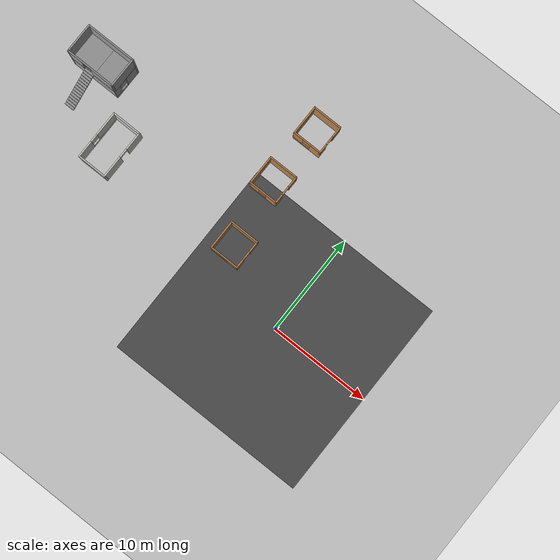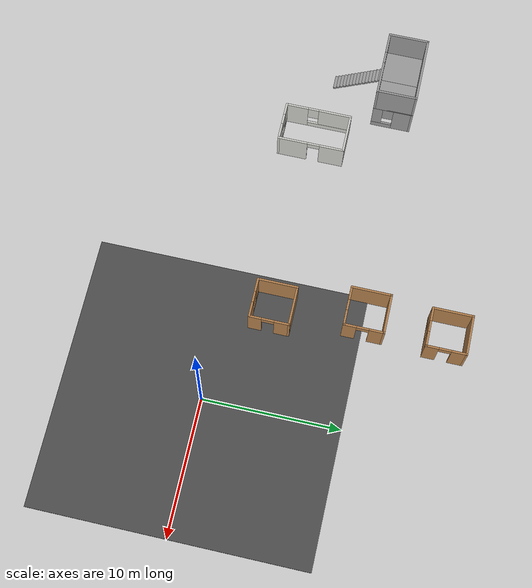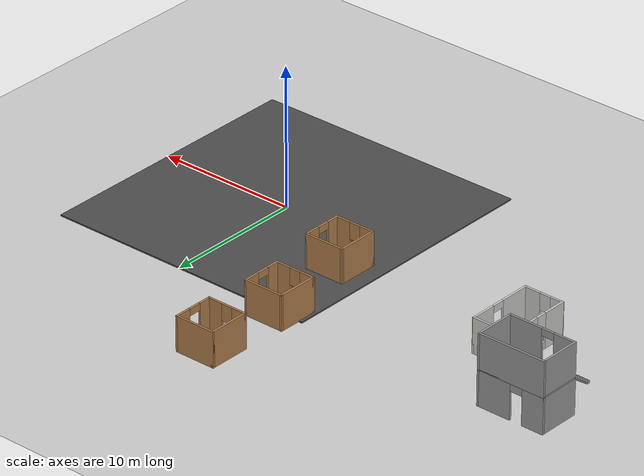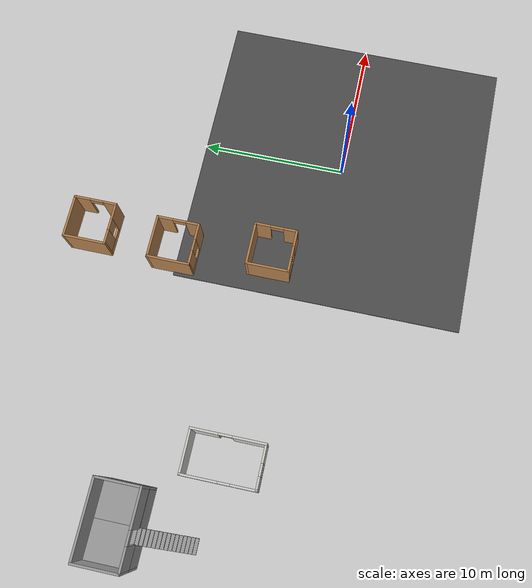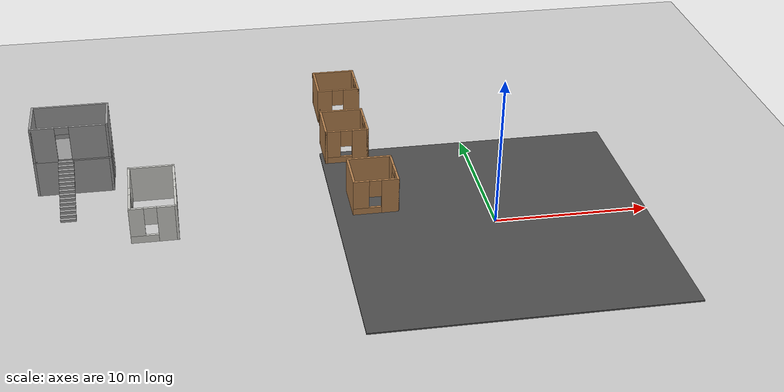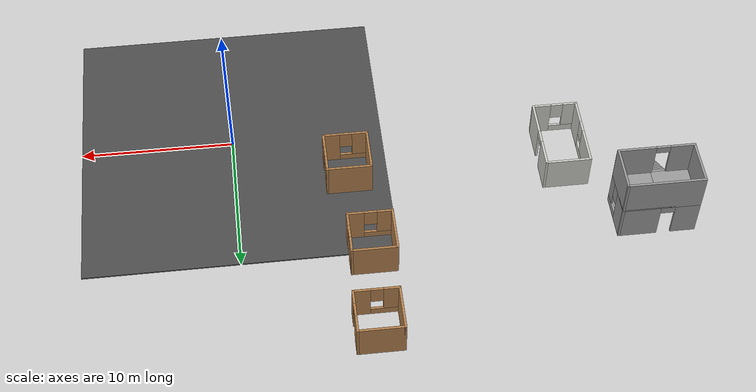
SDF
<sdf version="1.6">
 <world name="default">
  <model name="ground_plane">
   <static>1</static>
   <link name="link">
    <collision name="collision">
     <geometry><plane><normal>0 0 1</normal><size>100 100</size></plane></geometry>
     <surface><friction><ode><mu>100</mu><mu2>50</mu2></ode></friction></surface>
    </collision>
    <visual name="visual">
     <cast_shadows>0</cast_shadows>
     <geometry><plane><normal>0 0 1</normal><size>100 100</size></plane></geometry>
     <material>
      <script><uri>file://media/materials/scripts/gazebo.material</uri><name>Gazebo/Grey</name></script>
     </material>
    </visual>
   </link>
  </model>
  <model name="asphalt_plane">
   <static>1</static>
   <link name="link">
    <collision name="collision"><geometry><box><size>20 20 0.1</size></box></geometry></collision>
    <visual name="visual">
     <cast_shadows>0</cast_shadows>
     <geometry><box><size>20 20 0.1</size></box></geometry>
     <material>
      <script>
       <uri>model://asphalt_plane/materials/scripts</uri>
       <uri>model://asphalt_plane/materials/textures</uri>
       <name>vrc/asphalt</name>
      </script>
     </material>
    </visual>
   </link>
  </model>
  <model name="duplex">
   <pose>-26.5 7.252 0 0 -0 3.14</pose>
   <link name="Floor_5">
    <pose>-0 -1.70219 2.5 0 -0 0</pose>
    <visual name="Floor_5_Visual_0">
     <pose>-1.28918 0 0.05 0 -0 0</pose>
     <geometry><box><size>2.42164 3 0.1</size></box></geometry>
     <material>
      <script><uri>file://media/materials/scripts/gazebo.material</uri><name>Gazebo/Grey</name></script>
      <ambient>1 1 1 1</ambient>
     </material>
     <meta><layer>1</layer></meta>
    </visual>
    <collision name="Floor_5_Collision_0">
     <geometry><box><size>2.42164 3 0.1</size></box></geometry>
     <pose>-1.28918 0 0.05 0 -0 0</pose>
    </collision>
    <visual name="Floor_5_Visual_1">
     <pose>1.21082 -0.047806 0.05 0 -0 0</pose>
     <geometry><box><size>2.57836 2.90439 0.1</size></box></geometry>
     <material>
      <script><uri>file://media/materials/scripts/gazebo.material</uri><name>Gazebo/Grey</name></script>
      <ambient>1 1 1 1</ambient>
     </material>
     <meta><layer>1</layer></meta>
    </visual>
    <collision name="Floor_5_Collision_1">
     <geometry><box><size>2.57836 2.90439 0.1</size></box></geometry>
     <pose>1.21082 -0.047806 0.05 0 -0 0</pose>
    </collision>
    <visual name="Floor_5_Visual_2">
     <pose>1.71082 1.45219 0.05 0 -0 0</pose>
     <geometry><box><size>1.57836 0.095611 0.1</size></box></geometry>
     <material>
      <script><uri>file://media/materials/scripts/gazebo.material</uri><name>Gazebo/Grey</name></script>
      <ambient>1 1 1 1</ambient>
     </material>
     <meta><layer>1</layer></meta>
    </visual>
    <collision name="Floor_5_Collision_2">
     <geometry><box><size>1.57836 0.095611 0.1</size></box></geometry>
     <pose>1.71082 1.45219 0.05 0 -0 0</pose>
    </collision>
   </link>
   <link name="Stairs_2">
    <visual name="Stairs_2_Visual_0">
     <pose>0.421637 3.08553 0.083333 0 -0 0</pose>
     <geometry><box><size>1 0.233333 0.166667</size></box></geometry>
     <material>
      <script><uri>file://media/materials/scripts/gazebo.material</uri><name>Gazebo/Grey</name></script>
      <ambient>1 1 1 1</ambient>
     </material>
     <meta><layer>0</layer></meta>
    </visual>
    <collision name="Stairs_2_Collision_0">
     <geometry><box><size>1 0.233333 0.166667</size></box></geometry>
     <pose>0.421637 3.08553 0.083333 0 -0 0</pose>
    </collision>
    <visual name="Stairs_2_Visual_1">
     <pose>0.421637 2.85219 0.25 0 -0 0</pose>
     <geometry><box><size>1 0.233333 0.166667</size></box></geometry>
     <material>
      <script><uri>file://media/materials/scripts/gazebo.material</uri><name>Gazebo/Grey</name></script>
      <ambient>1 1 1 1</ambient>
     </material>
     <meta><layer>0</layer></meta>
    </visual>
    <collision name="Stairs_2_Collision_1">
     <geometry><box><size>1 0.233333 0.166667</size></box></geometry>
     <pose>0.421637 2.85219 0.25 0 -0 0</pose>
    </collision>
    <visual name="Stairs_2_Visual_2">
     <pose>0.421637 2.61886 0.416667 0 -0 0</pose>
     <geometry><box><size>1 0.233333 0.166667</size></box></geometry>
     <material>
      <script><uri>file://media/materials/scripts/gazebo.material</uri><name>Gazebo/Grey</name></script>
      <ambient>1 1 1 1</ambient>
     </material>
     <meta><layer>0</layer></meta>
    </visual>
    <collision name="Stairs_2_Collision_2">
     <geometry><box><size>1 0.233333 0.166667</size></box></geometry>
     <pose>0.421637 2.61886 0.416667 0 -0 0</pose>
    </collision>
    <visual name="Stairs_2_Visual_3">
     <pose>0.421637 2.38553 0.583333 0 -0 0</pose>
     <geometry><box><size>1 0.233333 0.166667</size></box></geometry>
     <material>
      <script><uri>file://media/materials/scripts/gazebo.material</uri><name>Gazebo/Grey</name></script>
      <ambient>1 1 1 1</ambient>
     </material>
     <meta><layer>0</layer></meta>
    </visual>
    <collision name="Stairs_2_Collision_3">
     <geometry><box><size>1 0.233333 0.166667</size></box></geometry>
     <pose>0.421637 2.38553 0.583333 0 -0 0</pose>
    </collision>
    <visual name="Stairs_2_Visual_4">
     <pose>0.421637 2.15219 0.75 0 -0 0</pose>
     <geometry><box><size>1 0.233333 0.166667</size></box></geometry>
     <material>
      <script><uri>file://media/materials/scripts/gazebo.material</uri><name>Gazebo/Grey</name></script>
      <ambient>1 1 1 1</ambient>
     </material>
     <meta><layer>0</layer></meta>
    </visual>
    <collision name="Stairs_2_Collision_4">
     <geometry><box><size>1 0.233333 0.166667</size></box></geometry>
     <pose>0.421637 2.15219 0.75 0 -0 0</pose>
    </collision>
    <visual name="Stairs_2_Visual_5">
     <pose>0.421637 1.91886 0.916667 0 -0 0</pose>
     <geometry><box><size>1 0.233333 0.166667</size></box></geometry>
     <material>
      <script><uri>file://media/materials/scripts/gazebo.material</uri><name>Gazebo/Grey</name></script>
      <ambient>1 1 1 1</ambient>
     </material>
     <meta><layer>0</layer></meta>
    </visual>
    <collision name="Stairs_2_Collision_5">
     <geometry><box><size>1 0.233333 0.166667</size></box></geometry>
     <pose>0.421637 1.91886 0.916667 0 -0 0</pose>
    </collision>
    <visual name="Stairs_2_Visual_6">
     <pose>0.421637 1.68553 1.08333 0 -0 0</pose>
     <geometry><box><size>1 0.233333 0.166667</size></box></geometry>
     <material>
      <script><uri>file://media/materials/scripts/gazebo.material</uri><name>Gazebo/Grey</name></script>
      <ambient>1 1 1 1</ambient>
     </material>
     <meta><layer>0</layer></meta>
    </visual>
    <collision name="Stairs_2_Collision_6">
     <geometry><box><size>1 0.233333 0.166667</size></box></geometry>
     <pose>0.421637 1.68553 1.08333 0 -0 0</pose>
    </collision>
    <visual name="Stairs_2_Visual_7">
     <pose>0.421637 1.45219 1.25 0 -0 0</pose>
     <geometry><box><size>1 0.233333 0.166667</size></box></geometry>
     <material>
      <script><uri>file://media/materials/scripts/gazebo.material</uri><name>Gazebo/Grey</name></script>
      <ambient>1 1 1 1</ambient>
     </material>
     <meta><layer>0</layer></meta>
    </visual>
    <collision name="Stairs_2_Collision_7">
     <geometry><box><size>1 0.233333 0.166667</size></box></geometry>
     <pose>0.421637 1.45219 1.25 0 -0 0</pose>
    </collision>
    <visual name="Stairs_2_Visual_8">
     <pose>0.421637 1.21886 1.41667 0 -0 0</pose>
     <geometry><box><size>1 0.233333 0.166667</size></box></geometry>
     <material>
      <script><uri>file://media/materials/scripts/gazebo.material</uri><name>Gazebo/Grey</name></script>
      <ambient>1 1 1 1</ambient>
     </material>
     <meta><layer>0</layer></meta>
    </visual>
    <collision name="Stairs_2_Collision_8">
     <geometry><box><size>1 0.233333 0.166667</size></box></geometry>
     <pose>0.421637 1.21886 1.41667 0 -0 0</pose>
    </collision>
    <visual name="Stairs_2_Visual_9">
     <pose>0.421637 0.985528 1.58333 0 -0 0</pose>
     <geometry><box><size>1 0.233333 0.166667</size></box></geometry>
     <material>
      <script><uri>file://media/materials/scripts/gazebo.material</uri><name>Gazebo/Grey</name></script>
      <ambient>1 1 1 1</ambient>
     </material>
     <meta><layer>0</layer></meta>
    </visual>
    <collision name="Stairs_2_Collision_9">
     <geometry><box><size>1 0.233333 0.166667</size></box></geometry>
     <pose>0.421637 0.985528 1.58333 0 -0 0</pose>
    </collision>
    <visual name="Stairs_2_Visual_10">
     <pose>0.421637 0.752194 1.75 0 -0 0</pose>
     <geometry><box><size>1 0.233333 0.166667</size></box></geometry>
     <material>
      <script><uri>file://media/materials/scripts/gazebo.material</uri><name>Gazebo/Grey</name></script>
      <ambient>1 1 1 1</ambient>
     </material>
     <meta><layer>0</layer></meta>
    </visual>
    <collision name="Stairs_2_Collision_10">
     <geometry><box><size>1 0.233333 0.166667</size></box></geometry>
     <pose>0.421637 0.752194 1.75 0 -0 0</pose>
    </collision>
    <visual name="Stairs_2_Visual_11">
     <pose>0.421637 0.518861 1.91667 0 -0 0</pose>
     <geometry><box><size>1 0.233333 0.166667</size></box></geometry>
     <material>
      <script><uri>file://media/materials/scripts/gazebo.material</uri><name>Gazebo/Grey</name></script>
      <ambient>1 1 1 1</ambient>
     </material>
     <meta><layer>0</layer></meta>
    </visual>
    <collision name="Stairs_2_Collision_11">
     <geometry><box><size>1 0.233333 0.166667</size></box></geometry>
     <pose>0.421637 0.518861 1.91667 0 -0 0</pose>
    </collision>
    <visual name="Stairs_2_Visual_12">
     <pose>0.421637 0.285528 2.08333 0 -0 0</pose>
     <geometry><box><size>1 0.233333 0.166667</size></box></geometry>
     <material>
      <script><uri>file://media/materials/scripts/gazebo.material</uri><name>Gazebo/Grey</name></script>
      <ambient>1 1 1 1</ambient>
     </material>
     <meta><layer>0</layer></meta>
    </visual>
    <collision name="Stairs_2_Collision_12">
     <geometry><box><size>1 0.233333 0.166667</size></box></geometry>
     <pose>0.421637 0.285528 2.08333 0 -0 0</pose>
    </collision>
    <visual name="Stairs_2_Visual_13">
     <pose>0.421637 0.052195 2.25 0 -0 0</pose>
     <geometry><box><size>1 0.233333 0.166667</size></box></geometry>
     <material>
      <script><uri>file://media/materials/scripts/gazebo.material</uri><name>Gazebo/Grey</name></script>
      <ambient>1 1 1 1</ambient>
     </material>
     <meta><layer>0</layer></meta>
    </visual>
    <collision name="Stairs_2_Collision_13">
     <geometry><box><size>1 0.233333 0.166667</size></box></geometry>
     <pose>0.421637 0.052195 2.25 0 -0 0</pose>
    </collision>
    <visual name="Stairs_2_Visual_14">
     <pose>0.421637 -0.181139 2.41667 0 -0 0</pose>
     <geometry><box><size>1 0.233333 0.166667</size></box></geometry>
     <material>
      <script><uri>file://media/materials/scripts/gazebo.material</uri><name>Gazebo/Grey</name></script>
      <ambient>1 1 1 1</ambient>
     </material>
     <meta><layer>0</layer></meta>
    </visual>
    <collision name="Stairs_2_Collision_14">
     <geometry><box><size>1 0.233333 0.166667</size></box></geometry>
     <pose>0.421637 -0.181139 2.41667 0 -0 0</pose>
    </collision>
   </link>
   <link name="Wall_33">
    <collision name="Wall_33_Collision">
     <geometry><box><size>5 0.15 2.5</size></box></geometry>
     <pose>0 0 1.25 0 -0 0</pose>
    </collision>
    <visual name="Wall_33_Visual">
     <pose>0 0 1.25 0 -0 0</pose>
     <geometry><box><size>5 0.15 2.5</size></box></geometry>
     <material>
      <script><uri>file://media/materials/scripts/gazebo.material</uri><name>Gazebo/Grey</name></script>
      <ambient>1 1 1 1</ambient>
     </material>
     <meta><layer>0</layer></meta>
    </visual>
    <pose>-0 -0.277195 0 0 -0 0</pose>
   </link>
   <link name="Wall_34">
    <collision name="Wall_34_Collision">
     <geometry><box><size>3 0.15 2.5</size></box></geometry>
     <pose>0 0 1.25 0 -0 0</pose>
    </collision>
    <visual name="Wall_34_Visual">
     <pose>0 0 1.25 0 -0 0</pose>
     <geometry><box><size>3 0.15 2.5</size></box></geometry>
     <material>
      <script><uri>file://media/materials/scripts/gazebo.material</uri><name>Gazebo/Grey</name></script>
      <ambient>1 1 1 1</ambient>
     </material>
     <meta><layer>0</layer></meta>
    </visual>
    <pose>2.425 -1.70219 0 0 -0 -1.5708</pose>
   </link>
   <link name="Wall_35">
    <pose>-0 -3.12719 0 0 -0 3.14159</pose>
    <visual name="Wall_35_Visual_0">
     <pose>-1.69725 0 1.25 0 -0 0</pose>
     <geometry><box><size>1.60549 0.15 2.5</size></box></geometry>
     <material>
      <script><uri>file://media/materials/scripts/gazebo.material</uri><name>Gazebo/Grey</name></script>
      <ambient>1 1 1 1</ambient>
     </material>
     <meta><layer>0</layer></meta>
    </visual>
    <collision name="Wall_35_Collision_0">
     <geometry><box><size>1.60549 0.15 2.5</size></box></geometry>
     <pose>-1.69725 0 1.25 0 -0 0</pose>
    </collision>
    <visual name="Wall_35_Visual_1">
     <pose>1.25275 0 1.25 0 -0 0</pose>
     <geometry><box><size>2.49451 0.15 2.5</size></box></geometry>
     <material>
      <script><uri>file://media/materials/scripts/gazebo.material</uri><name>Gazebo/Grey</name></script>
      <ambient>1 1 1 1</ambient>
     </material>
     <meta><layer>0</layer></meta>
    </visual>
    <collision name="Wall_35_Collision_1">
     <geometry><box><size>2.49451 0.15 2.5</size></box></geometry>
     <pose>1.25275 0 1.25 0 -0 0</pose>
    </collision>
    <visual name="Wall_35_Visual_2">
     <pose>-0.444507 0 2.25 0 -0 0</pose>
     <geometry><box><size>0.9 0.15 0.5</size></box></geometry>
     <material>
      <script><uri>file://media/materials/scripts/gazebo.material</uri><name>Gazebo/Grey</name></script>
      <ambient>1 1 1 1</ambient>
     </material>
     <meta><layer>0</layer></meta>
    </visual>
    <collision name="Wall_35_Collision_2">
     <geometry><box><size>0.9 0.15 0.5</size></box></geometry>
     <pose>-0.444507 0 2.25 0 -0 0</pose>
    </collision>
   </link>
   <link name="Wall_36">
    <pose>-2.425 -1.70219 0 0 -0 1.5708</pose>
    <visual name="Wall_36_Visual_0">
     <pose>-0.767883 0 1.25 0 -0 0</pose>
     <geometry><box><size>1.46423 0.15 2.5</size></box></geometry>
     <material>
      <script><uri>file://media/materials/scripts/gazebo.material</uri><name>Gazebo/Grey</name></script>
      <ambient>1 1 1 1</ambient>
     </material>
     <meta><layer>0</layer></meta>
    </visual>
    <collision name="Wall_36_Collision_0">
     <geometry><box><size>1.46423 0.15 2.5</size></box></geometry>
     <pose>-0.767883 0 1.25 0 -0 0</pose>
    </collision>
    <visual name="Wall_36_Visual_1">
     <pose>0.732117 0 0.25 0 -0 0</pose>
     <geometry><box><size>1.53577 0.15 0.5</size></box></geometry>
     <material>
      <script><uri>file://media/materials/scripts/gazebo.material</uri><name>Gazebo/Grey</name></script>
      <ambient>1 1 1 1</ambient>
     </material>
     <meta><layer>0</layer></meta>
    </visual>
    <collision name="Wall_36_Collision_1">
     <geometry><box><size>1.53577 0.15 0.5</size></box></geometry>
     <pose>0.732117 0 0.25 0 -0 0</pose>
    </collision>
    <visual name="Wall_36_Visual_2">
     <pose>1.13212 0 1.5 0 -0 0</pose>
     <geometry><box><size>0.735767 0.15 2</size></box></geometry>
     <material>
      <script><uri>file://media/materials/scripts/gazebo.material</uri><name>Gazebo/Grey</name></script>
      <ambient>1 1 1 1</ambient>
     </material>
     <meta><layer>0</layer></meta>
    </visual>
    <collision name="Wall_36_Collision_2">
     <geometry><box><size>0.735767 0.15 2</size></box></geometry>
     <pose>1.13212 0 1.5 0 -0 0</pose>
    </collision>
    <visual name="Wall_36_Visual_3">
     <pose>0.364233 0 1.9 0 -0 0</pose>
     <geometry><box><size>0.8 0.15 1.2</size></box></geometry>
     <material>
      <script><uri>file://media/materials/scripts/gazebo.material</uri><name>Gazebo/Grey</name></script>
      <ambient>1 1 1 1</ambient>
     </material>
     <meta><layer>0</layer></meta>
    </visual>
    <collision name="Wall_36_Collision_3">
     <geometry><box><size>0.8 0.15 1.2</size></box></geometry>
     <pose>0.364233 0 1.9 0 -0 0</pose>
    </collision>
   </link>
   <link name="Wall_47">
    <pose>-0 -0.277194 2.5 0 -0 0</pose>
    <visual name="Wall_47_Visual_0">
     <pose>-1.25275 0 1.25 0 -0 0</pose>
     <geometry><box><size>2.49451 0.15 2.5</size></box></geometry>
     <material>
      <script><uri>file://media/materials/scripts/gazebo.material</uri><name>Gazebo/Grey</name></script>
      <ambient>1 1 1 1</ambient>
     </material>
     <meta><layer>1</layer></meta>
    </visual>
    <collision name="Wall_47_Collision_0">
     <geometry><box><size>2.49451 0.15 2.5</size></box></geometry>
     <pose>-1.25275 0 1.25 0 -0 0</pose>
    </collision>
    <visual name="Wall_47_Visual_1">
     <pose>1.69725 0 1.25 0 -0 0</pose>
     <geometry><box><size>1.60549 0.15 2.5</size></box></geometry>
     <material>
      <script><uri>file://media/materials/scripts/gazebo.material</uri><name>Gazebo/Grey</name></script>
      <ambient>1 1 1 1</ambient>
     </material>
     <meta><layer>1</layer></meta>
    </visual>
    <collision name="Wall_47_Collision_1">
     <geometry><box><size>1.60549 0.15 2.5</size></box></geometry>
     <pose>1.69725 0 1.25 0 -0 0</pose>
    </collision>
    <visual name="Wall_47_Visual_2">
     <pose>0.444507 0 2.25 0 -0 0</pose>
     <geometry><box><size>0.9 0.15 0.5</size></box></geometry>
     <material>
      <script><uri>file://media/materials/scripts/gazebo.material</uri><name>Gazebo/Grey</name></script>
      <ambient>1 1 1 1</ambient>
     </material>
     <meta><layer>1</layer></meta>
    </visual>
    <collision name="Wall_47_Collision_2">
     <geometry><box><size>0.9 0.15 0.5</size></box></geometry>
     <pose>0.444507 0 2.25 0 -0 0</pose>
    </collision>
   </link>
   <link name="Wall_48">
    <collision name="Wall_48_Collision">
     <geometry><box><size>3 0.15 2.5</size></box></geometry>
     <pose>0 0 1.25 0 -0 0</pose>
    </collision>
    <visual name="Wall_48_Visual">
     <pose>0 0 1.25 0 -0 0</pose>
     <geometry><box><size>3 0.15 2.5</size></box></geometry>
     <material>
      <script><uri>file://media/materials/scripts/gazebo.material</uri><name>Gazebo/Grey</name></script>
      <ambient>1 1 1 1</ambient>
     </material>
     <meta><layer>1</layer></meta>
    </visual>
    <pose>2.425 -1.70219 2.5 0 -0 -1.5708</pose>
   </link>
   <link name="Wall_49">
    <collision name="Wall_49_Collision">
     <geometry><box><size>5 0.15 2.5</size></box></geometry>
     <pose>0 0 1.25 0 -0 0</pose>
    </collision>
    <visual name="Wall_49_Visual">
     <pose>0 0 1.25 0 -0 0</pose>
     <geometry><box><size>5 0.15 2.5</size></box></geometry>
     <material>
      <script><uri>file://media/materials/scripts/gazebo.material</uri><name>Gazebo/Grey</name></script>
      <ambient>1 1 1 1</ambient>
     </material>
     <meta><layer>1</layer></meta>
    </visual>
    <pose>-0 -3.12719 2.5 0 -0 3.14159</pose>
   </link>
   <link name="Wall_50">
    <collision name="Wall_50_Collision">
     <geometry><box><size>3 0.15 2.5</size></box></geometry>
     <pose>0 0 1.25 0 -0 0</pose>
    </collision>
    <visual name="Wall_50_Visual">
     <pose>0 0 1.25 0 -0 0</pose>
     <geometry><box><size>3 0.15 2.5</size></box></geometry>
     <material>
      <script><uri>file://media/materials/scripts/gazebo.material</uri><name>Gazebo/Grey</name></script>
      <ambient>1 1 1 1</ambient>
     </material>
     <meta><layer>1</layer></meta>
    </visual>
    <pose>-2.425 -1.70219 2.5 0 -0 1.5708</pose>
   </link>
   <static>1</static>
  </model>
  <model name="house1_0_clone_clone_0_clone">
   <pose>-7.3896 3.5 0 0 -0 3.14</pose>
   <link name="Wall_2">
    <pose>0 1.425 0 0 -0 0</pose>
    <visual name="Wall_2_Visual_0">
     <pose>-0.9275 0 1.25 0 -0 0</pose>
     <geometry><box><size>1.145 0.15 2.5</size></box></geometry>
     <material>
      <script><uri>file://media/materials/scripts/gazebo.material</uri><name>Gazebo/Wood</name></script>
      <ambient>1 1 1 1</ambient>
     </material>
     <meta><layer>0</layer></meta>
    </visual>
    <collision name="Wall_2_Collision_0">
     <geometry><box><size>1.145 0.15 2.5</size></box></geometry>
     <pose>-0.9275 0 1.25 0 -0 0</pose>
    </collision>
    <visual name="Wall_2_Visual_1">
     <pose>0.5725 0 0.25 0 -0 0</pose>
     <geometry><box><size>1.855 0.15 0.5</size></box></geometry>
     <material>
      <script><uri>file://media/materials/scripts/gazebo.material</uri><name>Gazebo/Wood</name></script>
      <ambient>1 1 1 1</ambient>
     </material>
     <meta><layer>0</layer></meta>
    </visual>
    <collision name="Wall_2_Collision_1">
     <geometry><box><size>1.855 0.15 0.5</size></box></geometry>
     <pose>0.5725 0 0.25 0 -0 0</pose>
    </collision>
    <visual name="Wall_2_Visual_2">
     <pose>0.9725 0 1.5 0 -0 0</pose>
     <geometry><box><size>1.055 0.15 2</size></box></geometry>
     <material>
      <script><uri>file://media/materials/scripts/gazebo.material</uri><name>Gazebo/Wood</name></script>
      <ambient>1 1 1 1</ambient>
     </material>
     <meta><layer>0</layer></meta>
    </visual>
    <collision name="Wall_2_Collision_2">
     <geometry><box><size>1.055 0.15 2</size></box></geometry>
     <pose>0.9725 0 1.5 0 -0 0</pose>
    </collision>
    <visual name="Wall_2_Visual_3">
     <pose>0.045 0 1.9 0 -0 0</pose>
     <geometry><box><size>0.8 0.15 1.2</size></box></geometry>
     <material>
      <script><uri>file://media/materials/scripts/gazebo.material</uri><name>Gazebo/Wood</name></script>
      <ambient>1 1 1 1</ambient>
     </material>
     <meta><layer>0</layer></meta>
    </visual>
    <collision name="Wall_2_Collision_3">
     <geometry><box><size>0.8 0.15 1.2</size></box></geometry>
     <pose>0.045 0 1.9 0 -0 0</pose>
    </collision>
   </link>
   <link name="Wall_3">
    <collision name="Wall_3_Collision">
     <geometry><box><size>3 0.15 2.5</size></box></geometry>
     <pose>0 0 1.25 0 -0 0</pose>
    </collision>
    <visual name="Wall_3_Visual">
     <pose>0 0 1.25 0 -0 0</pose>
     <geometry><box><size>3 0.15 2.5</size></box></geometry>
     <material>
      <script><uri>file://media/materials/scripts/gazebo.material</uri><name>Gazebo/Wood</name></script>
      <ambient>1 1 1 1</ambient>
     </material>
     <meta><layer>0</layer></meta>
    </visual>
    <pose>1.425 0 0 0 -0 -1.5708</pose>
   </link>
   <link name="Wall_4">
    <collision name="Wall_4_Collision">
     <geometry><box><size>3 0.15 2.5</size></box></geometry>
     <pose>0 0 1.25 0 -0 0</pose>
    </collision>
    <visual name="Wall_4_Visual">
     <pose>0 0 1.25 0 -0 0</pose>
     <geometry><box><size>3 0.15 2.5</size></box></geometry>
     <material>
      <script><uri>file://media/materials/scripts/gazebo.material</uri><name>Gazebo/Wood</name></script>
      <ambient>1 1 1 1</ambient>
     </material>
     <meta><layer>0</layer></meta>
    </visual>
    <pose>0 -1.425 0 0 -0 3.14159</pose>
   </link>
   <link name="Wall_5">
    <pose>-1.425 0 0 0 -0 1.5708</pose>
    <visual name="Wall_5_Visual_0">
     <pose>-0.9325 0 1.25 0 -0 0</pose>
     <geometry><box><size>1.135 0.15 2.5</size></box></geometry>
     <material>
      <script><uri>file://media/materials/scripts/gazebo.material</uri><name>Gazebo/Wood</name></script>
      <ambient>1 1 1 1</ambient>
     </material>
     <meta><layer>0</layer></meta>
    </visual>
    <collision name="Wall_5_Collision_0">
     <geometry><box><size>1.135 0.15 2.5</size></box></geometry>
     <pose>-0.9325 0 1.25 0 -0 0</pose>
    </collision>
    <visual name="Wall_5_Visual_1">
     <pose>1.0175 0 1.25 0 -0 0</pose>
     <geometry><box><size>0.965 0.15 2.5</size></box></geometry>
     <material>
      <script><uri>file://media/materials/scripts/gazebo.material</uri><name>Gazebo/Wood</name></script>
      <ambient>1 1 1 1</ambient>
     </material>
     <meta><layer>0</layer></meta>
    </visual>
    <collision name="Wall_5_Collision_1">
     <geometry><box><size>0.965 0.15 2.5</size></box></geometry>
     <pose>1.0175 0 1.25 0 -0 0</pose>
    </collision>
    <visual name="Wall_5_Visual_2">
     <pose>0.085 0 2.25 0 -0 0</pose>
     <geometry><box><size>0.9 0.15 0.5</size></box></geometry>
     <material>
      <script><uri>file://media/materials/scripts/gazebo.material</uri><name>Gazebo/Wood</name></script>
      <ambient>1 1 1 1</ambient>
     </material>
     <meta><layer>0</layer></meta>
    </visual>
    <collision name="Wall_5_Collision_2">
     <geometry><box><size>0.9 0.15 0.5</size></box></geometry>
     <pose>0.085 0 2.25 0 -0 0</pose>
    </collision>
   </link>
   <static>1</static>
  </model>
  <model name="house1_0_clone_clone_0_clone_0">
   <pose>-8.27278 10.0873 0 0 -0 3.14</pose>
   <link name="Wall_2">
    <pose>0 1.425 0 0 -0 0</pose>
    <visual name="Wall_2_Visual_0">
     <pose>-0.9275 0 1.25 0 -0 0</pose>
     <geometry><box><size>1.145 0.15 2.5</size></box></geometry>
     <material>
      <script><uri>file://media/materials/scripts/gazebo.material</uri><name>Gazebo/Wood</name></script>
      <ambient>1 1 1 1</ambient>
     </material>
     <meta><layer>0</layer></meta>
    </visual>
    <collision name="Wall_2_Collision_0">
     <geometry><box><size>1.145 0.15 2.5</size></box></geometry>
     <pose>-0.9275 0 1.25 0 -0 0</pose>
    </collision>
    <visual name="Wall_2_Visual_1">
     <pose>0.5725 0 0.25 0 -0 0</pose>
     <geometry><box><size>1.855 0.15 0.5</size></box></geometry>
     <material>
      <script><uri>file://media/materials/scripts/gazebo.material</uri><name>Gazebo/Wood</name></script>
      <ambient>1 1 1 1</ambient>
     </material>
     <meta><layer>0</layer></meta>
    </visual>
    <collision name="Wall_2_Collision_1">
     <geometry><box><size>1.855 0.15 0.5</size></box></geometry>
     <pose>0.5725 0 0.25 0 -0 0</pose>
    </collision>
    <visual name="Wall_2_Visual_2">
     <pose>0.9725 0 1.5 0 -0 0</pose>
     <geometry><box><size>1.055 0.15 2</size></box></geometry>
     <material>
      <script><uri>file://media/materials/scripts/gazebo.material</uri><name>Gazebo/Wood</name></script>
      <ambient>1 1 1 1</ambient>
     </material>
     <meta><layer>0</layer></meta>
    </visual>
    <collision name="Wall_2_Collision_2">
     <geometry><box><size>1.055 0.15 2</size></box></geometry>
     <pose>0.9725 0 1.5 0 -0 0</pose>
    </collision>
    <visual name="Wall_2_Visual_3">
     <pose>0.045 0 1.9 0 -0 0</pose>
     <geometry><box><size>0.8 0.15 1.2</size></box></geometry>
     <material>
      <script><uri>file://media/materials/scripts/gazebo.material</uri><name>Gazebo/Wood</name></script>
      <ambient>1 1 1 1</ambient>
     </material>
     <meta><layer>0</layer></meta>
    </visual>
    <collision name="Wall_2_Collision_3">
     <geometry><box><size>0.8 0.15 1.2</size></box></geometry>
     <pose>0.045 0 1.9 0 -0 0</pose>
    </collision>
   </link>
   <link name="Wall_3">
    <collision name="Wall_3_Collision">
     <geometry><box><size>3 0.15 2.5</size></box></geometry>
     <pose>0 0 1.25 0 -0 0</pose>
    </collision>
    <visual name="Wall_3_Visual">
     <pose>0 0 1.25 0 -0 0</pose>
     <geometry><box><size>3 0.15 2.5</size></box></geometry>
     <material>
      <script><uri>file://media/materials/scripts/gazebo.material</uri><name>Gazebo/Wood</name></script>
      <ambient>1 1 1 1</ambient>
     </material>
     <meta><layer>0</layer></meta>
    </visual>
    <pose>1.425 0 0 0 -0 -1.5708</pose>
   </link>
   <link name="Wall_4">
    <collision name="Wall_4_Collision">
     <geometry><box><size>3 0.15 2.5</size></box></geometry>
     <pose>0 0 1.25 0 -0 0</pose>
    </collision>
    <visual name="Wall_4_Visual">
     <pose>0 0 1.25 0 -0 0</pose>
     <geometry><box><size>3 0.15 2.5</size></box></geometry>
     <material>
      <script><uri>file://media/materials/scripts/gazebo.material</uri><name>Gazebo/Wood</name></script>
      <ambient>1 1 1 1</ambient>
     </material>
     <meta><layer>0</layer></meta>
    </visual>
    <pose>0 -1.425 0 0 -0 3.14159</pose>
   </link>
   <link name="Wall_5">
    <pose>-1.425 0 0 0 -0 1.5708</pose>
    <visual name="Wall_5_Visual_0">
     <pose>-0.9325 0 1.25 0 -0 0</pose>
     <geometry><box><size>1.135 0.15 2.5</size></box></geometry>
     <material>
      <script><uri>file://media/materials/scripts/gazebo.material</uri><name>Gazebo/Wood</name></script>
      <ambient>1 1 1 1</ambient>
     </material>
     <meta><layer>0</layer></meta>
    </visual>
    <collision name="Wall_5_Collision_0">
     <geometry><box><size>1.135 0.15 2.5</size></box></geometry>
     <pose>-0.9325 0 1.25 0 -0 0</pose>
    </collision>
    <visual name="Wall_5_Visual_1">
     <pose>1.0175 0 1.25 0 -0 0</pose>
     <geometry><box><size>0.965 0.15 2.5</size></box></geometry>
     <material>
      <script><uri>file://media/materials/scripts/gazebo.material</uri><name>Gazebo/Wood</name></script>
      <ambient>1 1 1 1</ambient>
     </material>
     <meta><layer>0</layer></meta>
    </visual>
    <collision name="Wall_5_Collision_1">
     <geometry><box><size>0.965 0.15 2.5</size></box></geometry>
     <pose>1.0175 0 1.25 0 -0 0</pose>
    </collision>
    <visual name="Wall_5_Visual_2">
     <pose>0.085 0 2.25 0 -0 0</pose>
     <geometry><box><size>0.9 0.15 0.5</size></box></geometry>
     <material>
      <script><uri>file://media/materials/scripts/gazebo.material</uri><name>Gazebo/Wood</name></script>
      <ambient>1 1 1 1</ambient>
     </material>
     <meta><layer>0</layer></meta>
    </visual>
    <collision name="Wall_5_Collision_2">
     <geometry><box><size>0.9 0.15 0.5</size></box></geometry>
     <pose>0.085 0 2.25 0 -0 0</pose>
    </collision>
   </link>
   <static>1</static>
  </model>
  <model name="house1_0_clone_1_clone_2">
   <pose>-8 15.9596 0 0 -0 3.14</pose>
   <link name="Wall_2">
    <pose>0 1.425 0 0 -0 0</pose>
    <visual name="Wall_2_Visual_0">
     <pose>-0.9275 0 1.25 0 -0 0</pose>
     <geometry><box><size>1.145 0.15 2.5</size></box></geometry>
     <material>
      <script><uri>file://media/materials/scripts/gazebo.material</uri><name>Gazebo/Wood</name></script>
      <ambient>1 1 1 1</ambient>
     </material>
     <meta><layer>0</layer></meta>
    </visual>
    <collision name="Wall_2_Collision_0">
     <geometry><box><size>1.145 0.15 2.5</size></box></geometry>
     <pose>-0.9275 0 1.25 0 -0 0</pose>
    </collision>
    <visual name="Wall_2_Visual_1">
     <pose>0.5725 0 0.25 0 -0 0</pose>
     <geometry><box><size>1.855 0.15 0.5</size></box></geometry>
     <material>
      <script><uri>file://media/materials/scripts/gazebo.material</uri><name>Gazebo/Wood</name></script>
      <ambient>1 1 1 1</ambient>
     </material>
     <meta><layer>0</layer></meta>
    </visual>
    <collision name="Wall_2_Collision_1">
     <geometry><box><size>1.855 0.15 0.5</size></box></geometry>
     <pose>0.5725 0 0.25 0 -0 0</pose>
    </collision>
    <visual name="Wall_2_Visual_2">
     <pose>0.9725 0 1.5 0 -0 0</pose>
     <geometry><box><size>1.055 0.15 2</size></box></geometry>
     <material>
      <script><uri>file://media/materials/scripts/gazebo.material</uri><name>Gazebo/Wood</name></script>
      <ambient>1 1 1 1</ambient>
     </material>
     <meta><layer>0</layer></meta>
    </visual>
    <collision name="Wall_2_Collision_2">
     <geometry><box><size>1.055 0.15 2</size></box></geometry>
     <pose>0.9725 0 1.5 0 -0 0</pose>
    </collision>
    <visual name="Wall_2_Visual_3">
     <pose>0.045 0 1.9 0 -0 0</pose>
     <geometry><box><size>0.8 0.15 1.2</size></box></geometry>
     <material>
      <script><uri>file://media/materials/scripts/gazebo.material</uri><name>Gazebo/Wood</name></script>
      <ambient>1 1 1 1</ambient>
     </material>
     <meta><layer>0</layer></meta>
    </visual>
    <collision name="Wall_2_Collision_3">
     <geometry><box><size>0.8 0.15 1.2</size></box></geometry>
     <pose>0.045 0 1.9 0 -0 0</pose>
    </collision>
   </link>
   <link name="Wall_3">
    <collision name="Wall_3_Collision">
     <geometry><box><size>3 0.15 2.5</size></box></geometry>
     <pose>0 0 1.25 0 -0 0</pose>
    </collision>
    <visual name="Wall_3_Visual">
     <pose>0 0 1.25 0 -0 0</pose>
     <geometry><box><size>3 0.15 2.5</size></box></geometry>
     <material>
      <script><uri>file://media/materials/scripts/gazebo.material</uri><name>Gazebo/Wood</name></script>
      <ambient>1 1 1 1</ambient>
     </material>
     <meta><layer>0</layer></meta>
    </visual>
    <pose>1.425 0 0 0 -0 -1.5708</pose>
   </link>
   <link name="Wall_4">
    <collision name="Wall_4_Collision">
     <geometry><box><size>3 0.15 2.5</size></box></geometry>
     <pose>0 0 1.25 0 -0 0</pose>
    </collision>
    <visual name="Wall_4_Visual">
     <pose>0 0 1.25 0 -0 0</pose>
     <geometry><box><size>3 0.15 2.5</size></box></geometry>
     <material>
      <script><uri>file://media/materials/scripts/gazebo.material</uri><name>Gazebo/Wood</name></script>
      <ambient>1 1 1 1</ambient>
     </material>
     <meta><layer>0</layer></meta>
    </visual>
    <pose>0 -1.425 0 0 -0 3.14159</pose>
   </link>
   <link name="Wall_5">
    <pose>-1.425 0 0 0 -0 1.5708</pose>
    <visual name="Wall_5_Visual_0">
     <pose>-0.9325 0 1.25 0 -0 0</pose>
     <geometry><box><size>1.135 0.15 2.5</size></box></geometry>
     <material>
      <script><uri>file://media/materials/scripts/gazebo.material</uri><name>Gazebo/Wood</name></script>
      <ambient>1 1 1 1</ambient>
     </material>
     <meta><layer>0</layer></meta>
    </visual>
    <collision name="Wall_5_Collision_0">
     <geometry><box><size>1.135 0.15 2.5</size></box></geometry>
     <pose>-0.9325 0 1.25 0 -0 0</pose>
    </collision>
    <visual name="Wall_5_Visual_1">
     <pose>1.0175 0 1.25 0 -0 0</pose>
     <geometry><box><size>0.965 0.15 2.5</size></box></geometry>
     <material>
      <script><uri>file://media/materials/scripts/gazebo.material</uri><name>Gazebo/Wood</name></script>
      <ambient>1 1 1 1</ambient>
     </material>
     <meta><layer>0</layer></meta>
    </visual>
    <collision name="Wall_5_Collision_1">
     <geometry><box><size>0.965 0.15 2.5</size></box></geometry>
     <pose>1.0175 0 1.25 0 -0 0</pose>
    </collision>
    <visual name="Wall_5_Visual_2">
     <pose>0.085 0 2.25 0 -0 0</pose>
     <geometry><box><size>0.9 0.15 0.5</size></box></geometry>
     <material>
      <script><uri>file://media/materials/scripts/gazebo.material</uri><name>Gazebo/Wood</name></script>
      <ambient>1 1 1 1</ambient>
     </material>
     <meta><layer>0</layer></meta>
    </visual>
    <collision name="Wall_5_Collision_2">
     <geometry><box><size>0.9 0.15 0.5</size></box></geometry>
     <pose>0.085 0 2.25 0 -0 0</pose>
    </collision>
   </link>
   <static>1</static>
  </model>
  <model name="house2_clone_clone_clone_0">
   <pose>-21.482 3.51638 0 0 -0 1.57</pose>
   <link name="Wall_10">
    <pose>-2.425 -0 0 0 -0 1.5708</pose>
    <visual name="Wall_10_Visual_0">
     <pose>-0.8725 0 1.25 0 -0 0</pose>
     <geometry><box><size>1.255 0.15 2.5</size></box></geometry>
     <material>
      <script><uri>file://media/materials/scripts/gazebo.material</uri><name>Gazebo/CeilingTiled</name></script>
      <ambient>1 1 1 1</ambient>
     </material>
     <meta><layer>0</layer></meta>
    </visual>
    <collision name="Wall_10_Collision_0">
     <geometry><box><size>1.255 0.15 2.5</size></box></geometry>
     <pose>-0.8725 0 1.25 0 -0 0</pose>
    </collision>
    <visual name="Wall_10_Visual_1">
     <pose>0.6275 0 0.25 0 -0 0</pose>
     <geometry><box><size>1.745 0.15 0.5</size></box></geometry>
     <material>
      <script><uri>file://media/materials/scripts/gazebo.material</uri><name>Gazebo/CeilingTiled</name></script>
      <ambient>1 1 1 1</ambient>
     </material>
     <meta><layer>0</layer></meta>
    </visual>
    <collision name="Wall_10_Collision_1">
     <geometry><box><size>1.745 0.15 0.5</size></box></geometry>
     <pose>0.6275 0 0.25 0 -0 0</pose>
    </collision>
    <visual name="Wall_10_Visual_2">
     <pose>1.0275 0 1.5 0 -0 0</pose>
     <geometry><box><size>0.945 0.15 2</size></box></geometry>
     <material>
      <script><uri>file://media/materials/scripts/gazebo.material</uri><name>Gazebo/CeilingTiled</name></script>
      <ambient>1 1 1 1</ambient>
     </material>
     <meta><layer>0</layer></meta>
    </visual>
    <collision name="Wall_10_Collision_2">
     <geometry><box><size>0.945 0.15 2</size></box></geometry>
     <pose>1.0275 0 1.5 0 -0 0</pose>
    </collision>
    <visual name="Wall_10_Visual_3">
     <pose>0.155 0 1.9 0 -0 0</pose>
     <geometry><box><size>0.8 0.15 1.2</size></box></geometry>
     <material>
      <script><uri>file://media/materials/scripts/gazebo.material</uri><name>Gazebo/CeilingTiled</name></script>
      <ambient>1 1 1 1</ambient>
     </material>
     <meta><layer>0</layer></meta>
    </visual>
    <collision name="Wall_10_Collision_3">
     <geometry><box><size>0.8 0.15 1.2</size></box></geometry>
     <pose>0.155 0 1.9 0 -0 0</pose>
    </collision>
   </link>
   <link name="Wall_7">
    <pose>0 1.425 0 0 -0 0</pose>
    <visual name="Wall_7_Visual_0">
     <pose>-1.6375 0 1.25 0 -0 0</pose>
     <geometry><box><size>1.725 0.15 2.5</size></box></geometry>
     <material>
      <script><uri>file://media/materials/scripts/gazebo.material</uri><name>Gazebo/CeilingTiled</name></script>
      <ambient>1 1 1 1</ambient>
     </material>
     <meta><layer>0</layer></meta>
    </visual>
    <collision name="Wall_7_Collision_0">
     <geometry><box><size>1.725 0.15 2.5</size></box></geometry>
     <pose>-1.6375 0 1.25 0 -0 0</pose>
    </collision>
    <visual name="Wall_7_Visual_1">
     <pose>0.8625 0 0.25 0 -0 0</pose>
     <geometry><box><size>3.275 0.15 0.5</size></box></geometry>
     <material>
      <script><uri>file://media/materials/scripts/gazebo.material</uri><name>Gazebo/CeilingTiled</name></script>
      <ambient>1 1 1 1</ambient>
     </material>
     <meta><layer>0</layer></meta>
    </visual>
    <collision name="Wall_7_Collision_1">
     <geometry><box><size>3.275 0.15 0.5</size></box></geometry>
     <pose>0.8625 0 0.25 0 -0 0</pose>
    </collision>
    <visual name="Wall_7_Visual_2">
     <pose>1.2625 0 1.5 0 -0 0</pose>
     <geometry><box><size>2.475 0.15 2</size></box></geometry>
     <material>
      <script><uri>file://media/materials/scripts/gazebo.material</uri><name>Gazebo/CeilingTiled</name></script>
      <ambient>1 1 1 1</ambient>
     </material>
     <meta><layer>0</layer></meta>
    </visual>
    <collision name="Wall_7_Collision_2">
     <geometry><box><size>2.475 0.15 2</size></box></geometry>
     <pose>1.2625 0 1.5 0 -0 0</pose>
    </collision>
    <visual name="Wall_7_Visual_3">
     <pose>-0.375 0 1.9 0 -0 0</pose>
     <geometry><box><size>0.8 0.15 1.2</size></box></geometry>
     <material>
      <script><uri>file://media/materials/scripts/gazebo.material</uri><name>Gazebo/CeilingTiled</name></script>
      <ambient>1 1 1 1</ambient>
     </material>
     <meta><layer>0</layer></meta>
    </visual>
    <collision name="Wall_7_Collision_3">
     <geometry><box><size>0.8 0.15 1.2</size></box></geometry>
     <pose>-0.375 0 1.9 0 -0 0</pose>
    </collision>
   </link>
   <link name="Wall_8">
    <collision name="Wall_8_Collision">
     <geometry><box><size>3 0.15 2.5</size></box></geometry>
     <pose>0 0 1.25 0 -0 0</pose>
    </collision>
    <visual name="Wall_8_Visual">
     <pose>0 0 1.25 0 -0 0</pose>
     <geometry><box><size>3 0.15 2.5</size></box></geometry>
     <material>
      <script><uri>file://media/materials/scripts/gazebo.material</uri><name>Gazebo/CeilingTiled</name></script>
      <ambient>1 1 1 1</ambient>
     </material>
     <meta><layer>0</layer></meta>
    </visual>
    <pose>2.425 -0 0 0 -0 -1.5708</pose>
   </link>
   <link name="Wall_9">
    <pose>0 -1.425 0 0 -0 3.14159</pose>
    <visual name="Wall_9_Visual_0">
     <pose>-1.5725 0 1.25 0 -0 0</pose>
     <geometry><box><size>1.855 0.15 2.5</size></box></geometry>
     <material>
      <script><uri>file://media/materials/scripts/gazebo.material</uri><name>Gazebo/CeilingTiled</name></script>
      <ambient>1 1 1 1</ambient>
     </material>
     <meta><layer>0</layer></meta>
    </visual>
    <collision name="Wall_9_Collision_0">
     <geometry><box><size>1.855 0.15 2.5</size></box></geometry>
     <pose>-1.5725 0 1.25 0 -0 0</pose>
    </collision>
    <visual name="Wall_9_Visual_1">
     <pose>1.3775 0 1.25 0 -0 0</pose>
     <geometry><box><size>2.245 0.15 2.5</size></box></geometry>
     <material>
      <script><uri>file://media/materials/scripts/gazebo.material</uri><name>Gazebo/CeilingTiled</name></script>
      <ambient>1 1 1 1</ambient>
     </material>
     <meta><layer>0</layer></meta>
    </visual>
    <collision name="Wall_9_Collision_1">
     <geometry><box><size>2.245 0.15 2.5</size></box></geometry>
     <pose>1.3775 0 1.25 0 -0 0</pose>
    </collision>
    <visual name="Wall_9_Visual_2">
     <pose>-0.195 0 2.25 0 -0 0</pose>
     <geometry><box><size>0.9 0.15 0.5</size></box></geometry>
     <material>
      <script><uri>file://media/materials/scripts/gazebo.material</uri><name>Gazebo/CeilingTiled</name></script>
      <ambient>1 1 1 1</ambient>
     </material>
     <meta><layer>0</layer></meta>
    </visual>
    <collision name="Wall_9_Collision_2">
     <geometry><box><size>0.9 0.15 0.5</size></box></geometry>
     <pose>-0.195 0 2.25 0 -0 0</pose>
    </collision>
   </link>
   <static>1</static>
  </model>
 </world>
</sdf>
